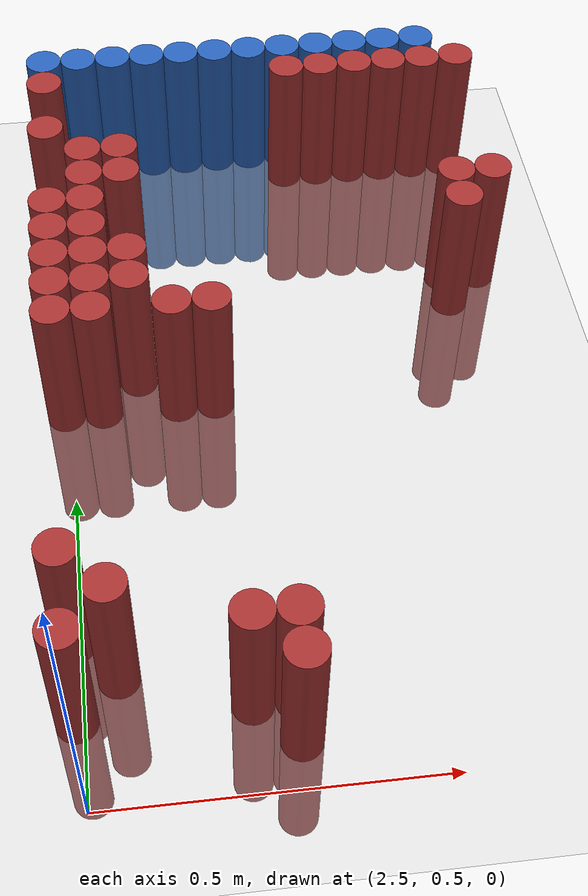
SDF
<sdf version="1.6">
 <world name="default">
  <model name="ground_plane">
   <static>1</static>
   <link name="link">
    <collision name="collision">
     <geometry><plane><normal>0 0 1</normal><size>100 100</size></plane></geometry>
     <surface><friction><ode><mu>100</mu><mu2>50</mu2></ode></friction></surface>
    </collision>
    <visual name="visual">
     <cast_shadows>0</cast_shadows>
     <geometry><plane><normal>0 0 1</normal><size>100 100</size></plane></geometry>
     <material>
      <script><uri>file://media/materials/scripts/gazebo.material</uri><name>Gazebo/Grey</name></script>
     </material>
    </visual>
   </link>
  </model>
  <model name="unit_cylinder_102">
   <static>1</static>
   <pose>2.490000 1.770000 0.000000 0.000000 0.000000 0.000000</pose>
   <link name="link">
    <inertial>
     <mass>1</mass>
     <inertia><ixx>0.145833</ixx><ixy>0</ixy><ixz>0</ixz><iyy>0.145833</iyy><iyz>0</iyz><izz>0.125</izz></inertia>
    </inertial>
    <collision name="collision">
     <geometry><cylinder><radius>0.030000</radius><length>0.5</length></cylinder></geometry>
    </collision>
    <visual name="visual">
     <geometry><cylinder><radius>0.030000</radius><length>0.5</length></cylinder></geometry>
     <material>
      <ambient>0.152000 0.379000 0.720000 1</ambient>
      <diffuse>0.152000 0.379000 0.720000 1</diffuse>
     </material>
     <material>
      <script><name>Gazebo/Grey</name><uri>file://media/materials/scripts/gazebo.material</uri></script>
     </material>
    </visual>
   </link>
  </model>
  <model name="unit_cylinder_103">
   <static>1</static>
   <pose>2.550000 1.770000 0.000000 0.000000 0.000000 0.000000</pose>
   <link name="link">
    <inertial>
     <mass>1</mass>
     <inertia><ixx>0.145833</ixx><ixy>0</ixy><ixz>0</ixz><iyy>0.145833</iyy><iyz>0</iyz><izz>0.125</izz></inertia>
    </inertial>
    <collision name="collision">
     <geometry><cylinder><radius>0.030000</radius><length>0.5</length></cylinder></geometry>
    </collision>
    <visual name="visual">
     <geometry><cylinder><radius>0.030000</radius><length>0.5</length></cylinder></geometry>
     <material>
      <ambient>0.152000 0.379000 0.720000 1</ambient>
      <diffuse>0.152000 0.379000 0.720000 1</diffuse>
     </material>
     <material>
      <script><name>Gazebo/Grey</name><uri>file://media/materials/scripts/gazebo.material</uri></script>
     </material>
    </visual>
   </link>
  </model>
  <model name="unit_cylinder_104">
   <static>1</static>
   <pose>2.610000 1.770000 0.000000 0.000000 0.000000 0.000000</pose>
   <link name="link">
    <inertial>
     <mass>1</mass>
     <inertia><ixx>0.145833</ixx><ixy>0</ixy><ixz>0</ixz><iyy>0.145833</iyy><iyz>0</iyz><izz>0.125</izz></inertia>
    </inertial>
    <collision name="collision">
     <geometry><cylinder><radius>0.030000</radius><length>0.5</length></cylinder></geometry>
    </collision>
    <visual name="visual">
     <geometry><cylinder><radius>0.030000</radius><length>0.5</length></cylinder></geometry>
     <material>
      <ambient>0.152000 0.379000 0.720000 1</ambient>
      <diffuse>0.152000 0.379000 0.720000 1</diffuse>
     </material>
     <material>
      <script><name>Gazebo/Grey</name><uri>file://media/materials/scripts/gazebo.material</uri></script>
     </material>
    </visual>
   </link>
  </model>
  <model name="unit_cylinder_105">
   <static>1</static>
   <pose>2.670000 1.770000 0.000000 0.000000 0.000000 0.000000</pose>
   <link name="link">
    <inertial>
     <mass>1</mass>
     <inertia><ixx>0.145833</ixx><ixy>0</ixy><ixz>0</ixz><iyy>0.145833</iyy><iyz>0</iyz><izz>0.125</izz></inertia>
    </inertial>
    <collision name="collision">
     <geometry><cylinder><radius>0.030000</radius><length>0.5</length></cylinder></geometry>
    </collision>
    <visual name="visual">
     <geometry><cylinder><radius>0.030000</radius><length>0.5</length></cylinder></geometry>
     <material>
      <ambient>0.152000 0.379000 0.720000 1</ambient>
      <diffuse>0.152000 0.379000 0.720000 1</diffuse>
     </material>
     <material>
      <script><name>Gazebo/Grey</name><uri>file://media/materials/scripts/gazebo.material</uri></script>
     </material>
    </visual>
   </link>
  </model>
  <model name="unit_cylinder_106">
   <static>1</static>
   <pose>2.730000 1.770000 0.000000 0.000000 0.000000 0.000000</pose>
   <link name="link">
    <inertial>
     <mass>1</mass>
     <inertia><ixx>0.145833</ixx><ixy>0</ixy><ixz>0</ixz><iyy>0.145833</iyy><iyz>0</iyz><izz>0.125</izz></inertia>
    </inertial>
    <collision name="collision">
     <geometry><cylinder><radius>0.030000</radius><length>0.5</length></cylinder></geometry>
    </collision>
    <visual name="visual">
     <geometry><cylinder><radius>0.030000</radius><length>0.5</length></cylinder></geometry>
     <material>
      <ambient>0.152000 0.379000 0.720000 1</ambient>
      <diffuse>0.152000 0.379000 0.720000 1</diffuse>
     </material>
     <material>
      <script><name>Gazebo/Grey</name><uri>file://media/materials/scripts/gazebo.material</uri></script>
     </material>
    </visual>
   </link>
  </model>
  <model name="unit_cylinder_107">
   <static>1</static>
   <pose>2.790000 1.770000 0.000000 0.000000 0.000000 0.000000</pose>
   <link name="link">
    <inertial>
     <mass>1</mass>
     <inertia><ixx>0.145833</ixx><ixy>0</ixy><ixz>0</ixz><iyy>0.145833</iyy><iyz>0</iyz><izz>0.125</izz></inertia>
    </inertial>
    <collision name="collision">
     <geometry><cylinder><radius>0.030000</radius><length>0.5</length></cylinder></geometry>
    </collision>
    <visual name="visual">
     <geometry><cylinder><radius>0.030000</radius><length>0.5</length></cylinder></geometry>
     <material>
      <ambient>0.152000 0.379000 0.720000 1</ambient>
      <diffuse>0.152000 0.379000 0.720000 1</diffuse>
     </material>
     <material>
      <script><name>Gazebo/Grey</name><uri>file://media/materials/scripts/gazebo.material</uri></script>
     </material>
    </visual>
   </link>
  </model>
  <model name="unit_cylinder_108">
   <static>1</static>
   <pose>2.850000 1.770000 0.000000 0.000000 0.000000 0.000000</pose>
   <link name="link">
    <inertial>
     <mass>1</mass>
     <inertia><ixx>0.145833</ixx><ixy>0</ixy><ixz>0</ixz><iyy>0.145833</iyy><iyz>0</iyz><izz>0.125</izz></inertia>
    </inertial>
    <collision name="collision">
     <geometry><cylinder><radius>0.030000</radius><length>0.5</length></cylinder></geometry>
    </collision>
    <visual name="visual">
     <geometry><cylinder><radius>0.030000</radius><length>0.5</length></cylinder></geometry>
     <material>
      <ambient>0.152000 0.379000 0.720000 1</ambient>
      <diffuse>0.152000 0.379000 0.720000 1</diffuse>
     </material>
     <material>
      <script><name>Gazebo/Grey</name><uri>file://media/materials/scripts/gazebo.material</uri></script>
     </material>
    </visual>
   </link>
  </model>
  <model name="unit_cylinder_109">
   <static>1</static>
   <pose>2.910000 1.770000 0.000000 0.000000 0.000000 0.000000</pose>
   <link name="link">
    <inertial>
     <mass>1</mass>
     <inertia><ixx>0.145833</ixx><ixy>0</ixy><ixz>0</ixz><iyy>0.145833</iyy><iyz>0</iyz><izz>0.125</izz></inertia>
    </inertial>
    <collision name="collision">
     <geometry><cylinder><radius>0.030000</radius><length>0.5</length></cylinder></geometry>
    </collision>
    <visual name="visual">
     <geometry><cylinder><radius>0.030000</radius><length>0.5</length></cylinder></geometry>
     <material>
      <ambient>0.152000 0.379000 0.720000 1</ambient>
      <diffuse>0.152000 0.379000 0.720000 1</diffuse>
     </material>
     <material>
      <script><name>Gazebo/Grey</name><uri>file://media/materials/scripts/gazebo.material</uri></script>
     </material>
    </visual>
   </link>
  </model>
  <model name="unit_cylinder_110">
   <static>1</static>
   <pose>2.970000 1.770000 0.000000 0.000000 0.000000 0.000000</pose>
   <link name="link">
    <inertial>
     <mass>1</mass>
     <inertia><ixx>0.145833</ixx><ixy>0</ixy><ixz>0</ixz><iyy>0.145833</iyy><iyz>0</iyz><izz>0.125</izz></inertia>
    </inertial>
    <collision name="collision">
     <geometry><cylinder><radius>0.030000</radius><length>0.5</length></cylinder></geometry>
    </collision>
    <visual name="visual">
     <geometry><cylinder><radius>0.030000</radius><length>0.5</length></cylinder></geometry>
     <material>
      <ambient>0.152000 0.379000 0.720000 1</ambient>
      <diffuse>0.152000 0.379000 0.720000 1</diffuse>
     </material>
     <material>
      <script><name>Gazebo/Grey</name><uri>file://media/materials/scripts/gazebo.material</uri></script>
     </material>
    </visual>
   </link>
  </model>
  <model name="unit_cylinder_111">
   <static>1</static>
   <pose>3.030000 1.770000 0.000000 0.000000 0.000000 0.000000</pose>
   <link name="link">
    <inertial>
     <mass>1</mass>
     <inertia><ixx>0.145833</ixx><ixy>0</ixy><ixz>0</ixz><iyy>0.145833</iyy><iyz>0</iyz><izz>0.125</izz></inertia>
    </inertial>
    <collision name="collision">
     <geometry><cylinder><radius>0.030000</radius><length>0.5</length></cylinder></geometry>
    </collision>
    <visual name="visual">
     <geometry><cylinder><radius>0.030000</radius><length>0.5</length></cylinder></geometry>
     <material>
      <ambient>0.152000 0.379000 0.720000 1</ambient>
      <diffuse>0.152000 0.379000 0.720000 1</diffuse>
     </material>
     <material>
      <script><name>Gazebo/Grey</name><uri>file://media/materials/scripts/gazebo.material</uri></script>
     </material>
    </visual>
   </link>
  </model>
  <model name="unit_cylinder_112">
   <static>1</static>
   <pose>3.090000 1.770000 0.000000 0.000000 0.000000 0.000000</pose>
   <link name="link">
    <inertial>
     <mass>1</mass>
     <inertia><ixx>0.145833</ixx><ixy>0</ixy><ixz>0</ixz><iyy>0.145833</iyy><iyz>0</iyz><izz>0.125</izz></inertia>
    </inertial>
    <collision name="collision">
     <geometry><cylinder><radius>0.030000</radius><length>0.5</length></cylinder></geometry>
    </collision>
    <visual name="visual">
     <geometry><cylinder><radius>0.030000</radius><length>0.5</length></cylinder></geometry>
     <material>
      <ambient>0.152000 0.379000 0.720000 1</ambient>
      <diffuse>0.152000 0.379000 0.720000 1</diffuse>
     </material>
     <material>
      <script><name>Gazebo/Grey</name><uri>file://media/materials/scripts/gazebo.material</uri></script>
     </material>
    </visual>
   </link>
  </model>
  <model name="unit_cylinder_113">
   <static>1</static>
   <pose>3.150000 1.770000 0.000000 0.000000 0.000000 0.000000</pose>
   <link name="link">
    <inertial>
     <mass>1</mass>
     <inertia><ixx>0.145833</ixx><ixy>0</ixy><ixz>0</ixz><iyy>0.145833</iyy><iyz>0</iyz><izz>0.125</izz></inertia>
    </inertial>
    <collision name="collision">
     <geometry><cylinder><radius>0.030000</radius><length>0.5</length></cylinder></geometry>
    </collision>
    <visual name="visual">
     <geometry><cylinder><radius>0.030000</radius><length>0.5</length></cylinder></geometry>
     <material>
      <ambient>0.152000 0.379000 0.720000 1</ambient>
      <diffuse>0.152000 0.379000 0.720000 1</diffuse>
     </material>
     <material>
      <script><name>Gazebo/Grey</name><uri>file://media/materials/scripts/gazebo.material</uri></script>
     </material>
    </visual>
   </link>
  </model>
  <model name="unit_cylinder_128">
   <static>1</static>
   <pose>2.490000 1.710000 0.000000 0.000000 0.000000 0.000000</pose>
   <link name="link">
    <inertial>
     <mass>1</mass>
     <inertia><ixx>0.145833</ixx><ixy>0</ixy><ixz>0</ixz><iyy>0.145833</iyy><iyz>0</iyz><izz>0.125</izz></inertia>
    </inertial>
    <collision name="collision">
     <geometry><cylinder><radius>0.030000</radius><length>0.5</length></cylinder></geometry>
    </collision>
    <visual name="visual">
     <geometry><cylinder><radius>0.030000</radius><length>0.5</length></cylinder></geometry>
     <material>
      <ambient>0.648000 0.192000 0.192000 1</ambient>
      <diffuse>0.648000 0.192000 0.192000 1</diffuse>
     </material>
     <material>
      <script><name>Gazebo/Grey</name><uri>file://media/materials/scripts/gazebo.material</uri></script>
     </material>
    </visual>
   </link>
  </model>
  <model name="unit_cylinder_129">
   <static>1</static>
   <pose>2.910000 1.710000 0.000000 0.000000 0.000000 0.000000</pose>
   <link name="link">
    <inertial>
     <mass>1</mass>
     <inertia><ixx>0.145833</ixx><ixy>0</ixy><ixz>0</ixz><iyy>0.145833</iyy><iyz>0</iyz><izz>0.125</izz></inertia>
    </inertial>
    <collision name="collision">
     <geometry><cylinder><radius>0.030000</radius><length>0.5</length></cylinder></geometry>
    </collision>
    <visual name="visual">
     <geometry><cylinder><radius>0.030000</radius><length>0.5</length></cylinder></geometry>
     <material>
      <ambient>0.648000 0.192000 0.192000 1</ambient>
      <diffuse>0.648000 0.192000 0.192000 1</diffuse>
     </material>
     <material>
      <script><name>Gazebo/Grey</name><uri>file://media/materials/scripts/gazebo.material</uri></script>
     </material>
    </visual>
   </link>
  </model>
  <model name="unit_cylinder_130">
   <static>1</static>
   <pose>2.970000 1.710000 0.000000 0.000000 0.000000 0.000000</pose>
   <link name="link">
    <inertial>
     <mass>1</mass>
     <inertia><ixx>0.145833</ixx><ixy>0</ixy><ixz>0</ixz><iyy>0.145833</iyy><iyz>0</iyz><izz>0.125</izz></inertia>
    </inertial>
    <collision name="collision">
     <geometry><cylinder><radius>0.030000</radius><length>0.5</length></cylinder></geometry>
    </collision>
    <visual name="visual">
     <geometry><cylinder><radius>0.030000</radius><length>0.5</length></cylinder></geometry>
     <material>
      <ambient>0.648000 0.192000 0.192000 1</ambient>
      <diffuse>0.648000 0.192000 0.192000 1</diffuse>
     </material>
     <material>
      <script><name>Gazebo/Grey</name><uri>file://media/materials/scripts/gazebo.material</uri></script>
     </material>
    </visual>
   </link>
  </model>
  <model name="unit_cylinder_131">
   <static>1</static>
   <pose>3.030000 1.710000 0.000000 0.000000 0.000000 0.000000</pose>
   <link name="link">
    <inertial>
     <mass>1</mass>
     <inertia><ixx>0.145833</ixx><ixy>0</ixy><ixz>0</ixz><iyy>0.145833</iyy><iyz>0</iyz><izz>0.125</izz></inertia>
    </inertial>
    <collision name="collision">
     <geometry><cylinder><radius>0.030000</radius><length>0.5</length></cylinder></geometry>
    </collision>
    <visual name="visual">
     <geometry><cylinder><radius>0.030000</radius><length>0.5</length></cylinder></geometry>
     <material>
      <ambient>0.648000 0.192000 0.192000 1</ambient>
      <diffuse>0.648000 0.192000 0.192000 1</diffuse>
     </material>
     <material>
      <script><name>Gazebo/Grey</name><uri>file://media/materials/scripts/gazebo.material</uri></script>
     </material>
    </visual>
   </link>
  </model>
  <model name="unit_cylinder_132">
   <static>1</static>
   <pose>3.090000 1.710000 0.000000 0.000000 0.000000 0.000000</pose>
   <link name="link">
    <inertial>
     <mass>1</mass>
     <inertia><ixx>0.145833</ixx><ixy>0</ixy><ixz>0</ixz><iyy>0.145833</iyy><iyz>0</iyz><izz>0.125</izz></inertia>
    </inertial>
    <collision name="collision">
     <geometry><cylinder><radius>0.030000</radius><length>0.5</length></cylinder></geometry>
    </collision>
    <visual name="visual">
     <geometry><cylinder><radius>0.030000</radius><length>0.5</length></cylinder></geometry>
     <material>
      <ambient>0.648000 0.192000 0.192000 1</ambient>
      <diffuse>0.648000 0.192000 0.192000 1</diffuse>
     </material>
     <material>
      <script><name>Gazebo/Grey</name><uri>file://media/materials/scripts/gazebo.material</uri></script>
     </material>
    </visual>
   </link>
  </model>
  <model name="unit_cylinder_133">
   <static>1</static>
   <pose>3.150000 1.710000 0.000000 0.000000 0.000000 0.000000</pose>
   <link name="link">
    <inertial>
     <mass>1</mass>
     <inertia><ixx>0.145833</ixx><ixy>0</ixy><ixz>0</ixz><iyy>0.145833</iyy><iyz>0</iyz><izz>0.125</izz></inertia>
    </inertial>
    <collision name="collision">
     <geometry><cylinder><radius>0.030000</radius><length>0.5</length></cylinder></geometry>
    </collision>
    <visual name="visual">
     <geometry><cylinder><radius>0.030000</radius><length>0.5</length></cylinder></geometry>
     <material>
      <ambient>0.648000 0.192000 0.192000 1</ambient>
      <diffuse>0.648000 0.192000 0.192000 1</diffuse>
     </material>
     <material>
      <script><name>Gazebo/Grey</name><uri>file://media/materials/scripts/gazebo.material</uri></script>
     </material>
    </visual>
   </link>
  </model>
  <model name="unit_cylinder_134">
   <static>1</static>
   <pose>3.210000 1.710000 0.000000 0.000000 0.000000 0.000000</pose>
   <link name="link">
    <inertial>
     <mass>1</mass>
     <inertia><ixx>0.145833</ixx><ixy>0</ixy><ixz>0</ixz><iyy>0.145833</iyy><iyz>0</iyz><izz>0.125</izz></inertia>
    </inertial>
    <collision name="collision">
     <geometry><cylinder><radius>0.030000</radius><length>0.5</length></cylinder></geometry>
    </collision>
    <visual name="visual">
     <geometry><cylinder><radius>0.030000</radius><length>0.5</length></cylinder></geometry>
     <material>
      <ambient>0.648000 0.192000 0.192000 1</ambient>
      <diffuse>0.648000 0.192000 0.192000 1</diffuse>
     </material>
     <material>
      <script><name>Gazebo/Grey</name><uri>file://media/materials/scripts/gazebo.material</uri></script>
     </material>
    </visual>
   </link>
  </model>
  <model name="unit_cylinder_150">
   <static>1</static>
   <pose>2.490000 1.590000 0.000000 0.000000 0.000000 0.000000</pose>
   <link name="link">
    <inertial>
     <mass>1</mass>
     <inertia><ixx>0.145833</ixx><ixy>0</ixy><ixz>0</ixz><iyy>0.145833</iyy><iyz>0</iyz><izz>0.125</izz></inertia>
    </inertial>
    <collision name="collision">
     <geometry><cylinder><radius>0.030000</radius><length>0.5</length></cylinder></geometry>
    </collision>
    <visual name="visual">
     <geometry><cylinder><radius>0.030000</radius><length>0.5</length></cylinder></geometry>
     <material>
      <ambient>0.648000 0.192000 0.192000 1</ambient>
      <diffuse>0.648000 0.192000 0.192000 1</diffuse>
     </material>
     <material>
      <script><name>Gazebo/Grey</name><uri>file://media/materials/scripts/gazebo.material</uri></script>
     </material>
    </visual>
   </link>
  </model>
  <model name="unit_cylinder_153">
   <static>1</static>
   <pose>2.550000 1.530000 0.000000 0.000000 0.000000 0.000000</pose>
   <link name="link">
    <inertial>
     <mass>1</mass>
     <inertia><ixx>0.145833</ixx><ixy>0</ixy><ixz>0</ixz><iyy>0.145833</iyy><iyz>0</iyz><izz>0.125</izz></inertia>
    </inertial>
    <collision name="collision">
     <geometry><cylinder><radius>0.030000</radius><length>0.5</length></cylinder></geometry>
    </collision>
    <visual name="visual">
     <geometry><cylinder><radius>0.030000</radius><length>0.5</length></cylinder></geometry>
     <material>
      <ambient>0.648000 0.192000 0.192000 1</ambient>
      <diffuse>0.648000 0.192000 0.192000 1</diffuse>
     </material>
     <material>
      <script><name>Gazebo/Grey</name><uri>file://media/materials/scripts/gazebo.material</uri></script>
     </material>
    </visual>
   </link>
  </model>
  <model name="unit_cylinder_154">
   <static>1</static>
   <pose>2.610000 1.530000 0.000000 0.000000 0.000000 0.000000</pose>
   <link name="link">
    <inertial>
     <mass>1</mass>
     <inertia><ixx>0.145833</ixx><ixy>0</ixy><ixz>0</ixz><iyy>0.145833</iyy><iyz>0</iyz><izz>0.125</izz></inertia>
    </inertial>
    <collision name="collision">
     <geometry><cylinder><radius>0.030000</radius><length>0.5</length></cylinder></geometry>
    </collision>
    <visual name="visual">
     <geometry><cylinder><radius>0.030000</radius><length>0.5</length></cylinder></geometry>
     <material>
      <ambient>0.648000 0.192000 0.192000 1</ambient>
      <diffuse>0.648000 0.192000 0.192000 1</diffuse>
     </material>
     <material>
      <script><name>Gazebo/Grey</name><uri>file://media/materials/scripts/gazebo.material</uri></script>
     </material>
    </visual>
   </link>
  </model>
  <model name="unit_cylinder_155">
   <static>1</static>
   <pose>2.550000 1.470000 0.000000 0.000000 0.000000 0.000000</pose>
   <link name="link">
    <inertial>
     <mass>1</mass>
     <inertia><ixx>0.145833</ixx><ixy>0</ixy><ixz>0</ixz><iyy>0.145833</iyy><iyz>0</iyz><izz>0.125</izz></inertia>
    </inertial>
    <collision name="collision">
     <geometry><cylinder><radius>0.030000</radius><length>0.5</length></cylinder></geometry>
    </collision>
    <visual name="visual">
     <geometry><cylinder><radius>0.030000</radius><length>0.5</length></cylinder></geometry>
     <material>
      <ambient>0.648000 0.192000 0.192000 1</ambient>
      <diffuse>0.648000 0.192000 0.192000 1</diffuse>
     </material>
     <material>
      <script><name>Gazebo/Grey</name><uri>file://media/materials/scripts/gazebo.material</uri></script>
     </material>
    </visual>
   </link>
  </model>
  <model name="unit_cylinder_156">
   <static>1</static>
   <pose>2.610000 1.470000 0.000000 0.000000 0.000000 0.000000</pose>
   <link name="link">
    <inertial>
     <mass>1</mass>
     <inertia><ixx>0.145833</ixx><ixy>0</ixy><ixz>0</ixz><iyy>0.145833</iyy><iyz>0</iyz><izz>0.125</izz></inertia>
    </inertial>
    <collision name="collision">
     <geometry><cylinder><radius>0.030000</radius><length>0.5</length></cylinder></geometry>
    </collision>
    <visual name="visual">
     <geometry><cylinder><radius>0.030000</radius><length>0.5</length></cylinder></geometry>
     <material>
      <ambient>0.648000 0.192000 0.192000 1</ambient>
      <diffuse>0.648000 0.192000 0.192000 1</diffuse>
     </material>
     <material>
      <script><name>Gazebo/Grey</name><uri>file://media/materials/scripts/gazebo.material</uri></script>
     </material>
    </visual>
   </link>
  </model>
  <model name="unit_cylinder_157">
   <static>1</static>
   <pose>2.490000 1.410000 0.000000 0.000000 0.000000 0.000000</pose>
   <link name="link">
    <inertial>
     <mass>1</mass>
     <inertia><ixx>0.145833</ixx><ixy>0</ixy><ixz>0</ixz><iyy>0.145833</iyy><iyz>0</iyz><izz>0.125</izz></inertia>
    </inertial>
    <collision name="collision">
     <geometry><cylinder><radius>0.030000</radius><length>0.5</length></cylinder></geometry>
    </collision>
    <visual name="visual">
     <geometry><cylinder><radius>0.030000</radius><length>0.5</length></cylinder></geometry>
     <material>
      <ambient>0.648000 0.192000 0.192000 1</ambient>
      <diffuse>0.648000 0.192000 0.192000 1</diffuse>
     </material>
     <material>
      <script><name>Gazebo/Grey</name><uri>file://media/materials/scripts/gazebo.material</uri></script>
     </material>
    </visual>
   </link>
  </model>
  <model name="unit_cylinder_158">
   <static>1</static>
   <pose>2.550000 1.410000 0.000000 0.000000 0.000000 0.000000</pose>
   <link name="link">
    <inertial>
     <mass>1</mass>
     <inertia><ixx>0.145833</ixx><ixy>0</ixy><ixz>0</ixz><iyy>0.145833</iyy><iyz>0</iyz><izz>0.125</izz></inertia>
    </inertial>
    <collision name="collision">
     <geometry><cylinder><radius>0.030000</radius><length>0.5</length></cylinder></geometry>
    </collision>
    <visual name="visual">
     <geometry><cylinder><radius>0.030000</radius><length>0.5</length></cylinder></geometry>
     <material>
      <ambient>0.648000 0.192000 0.192000 1</ambient>
      <diffuse>0.648000 0.192000 0.192000 1</diffuse>
     </material>
     <material>
      <script><name>Gazebo/Grey</name><uri>file://media/materials/scripts/gazebo.material</uri></script>
     </material>
    </visual>
   </link>
  </model>
  <model name="unit_cylinder_159">
   <static>1</static>
   <pose>3.150000 1.410000 0.000000 0.000000 0.000000 0.000000</pose>
   <link name="link">
    <inertial>
     <mass>1</mass>
     <inertia><ixx>0.145833</ixx><ixy>0</ixy><ixz>0</ixz><iyy>0.145833</iyy><iyz>0</iyz><izz>0.125</izz></inertia>
    </inertial>
    <collision name="collision">
     <geometry><cylinder><radius>0.030000</radius><length>0.5</length></cylinder></geometry>
    </collision>
    <visual name="visual">
     <geometry><cylinder><radius>0.030000</radius><length>0.5</length></cylinder></geometry>
     <material>
      <ambient>0.648000 0.192000 0.192000 1</ambient>
      <diffuse>0.648000 0.192000 0.192000 1</diffuse>
     </material>
     <material>
      <script><name>Gazebo/Grey</name><uri>file://media/materials/scripts/gazebo.material</uri></script>
     </material>
    </visual>
   </link>
  </model>
  <model name="unit_cylinder_160">
   <static>1</static>
   <pose>3.210000 1.410000 0.000000 0.000000 0.000000 0.000000</pose>
   <link name="link">
    <inertial>
     <mass>1</mass>
     <inertia><ixx>0.145833</ixx><ixy>0</ixy><ixz>0</ixz><iyy>0.145833</iyy><iyz>0</iyz><izz>0.125</izz></inertia>
    </inertial>
    <collision name="collision">
     <geometry><cylinder><radius>0.030000</radius><length>0.5</length></cylinder></geometry>
    </collision>
    <visual name="visual">
     <geometry><cylinder><radius>0.030000</radius><length>0.5</length></cylinder></geometry>
     <material>
      <ambient>0.648000 0.192000 0.192000 1</ambient>
      <diffuse>0.648000 0.192000 0.192000 1</diffuse>
     </material>
     <material>
      <script><name>Gazebo/Grey</name><uri>file://media/materials/scripts/gazebo.material</uri></script>
     </material>
    </visual>
   </link>
  </model>
  <model name="unit_cylinder_164">
   <static>1</static>
   <pose>2.490000 1.350000 0.000000 0.000000 0.000000 0.000000</pose>
   <link name="link">
    <inertial>
     <mass>1</mass>
     <inertia><ixx>0.145833</ixx><ixy>0</ixy><ixz>0</ixz><iyy>0.145833</iyy><iyz>0</iyz><izz>0.125</izz></inertia>
    </inertial>
    <collision name="collision">
     <geometry><cylinder><radius>0.030000</radius><length>0.5</length></cylinder></geometry>
    </collision>
    <visual name="visual">
     <geometry><cylinder><radius>0.030000</radius><length>0.5</length></cylinder></geometry>
     <material>
      <ambient>0.648000 0.192000 0.192000 1</ambient>
      <diffuse>0.648000 0.192000 0.192000 1</diffuse>
     </material>
     <material>
      <script><name>Gazebo/Grey</name><uri>file://media/materials/scripts/gazebo.material</uri></script>
     </material>
    </visual>
   </link>
  </model>
  <model name="unit_cylinder_165">
   <static>1</static>
   <pose>2.550000 1.350000 0.000000 0.000000 0.000000 0.000000</pose>
   <link name="link">
    <inertial>
     <mass>1</mass>
     <inertia><ixx>0.145833</ixx><ixy>0</ixy><ixz>0</ixz><iyy>0.145833</iyy><iyz>0</iyz><izz>0.125</izz></inertia>
    </inertial>
    <collision name="collision">
     <geometry><cylinder><radius>0.030000</radius><length>0.5</length></cylinder></geometry>
    </collision>
    <visual name="visual">
     <geometry><cylinder><radius>0.030000</radius><length>0.5</length></cylinder></geometry>
     <material>
      <ambient>0.648000 0.192000 0.192000 1</ambient>
      <diffuse>0.648000 0.192000 0.192000 1</diffuse>
     </material>
     <material>
      <script><name>Gazebo/Grey</name><uri>file://media/materials/scripts/gazebo.material</uri></script>
     </material>
    </visual>
   </link>
  </model>
  <model name="unit_cylinder_166">
   <static>1</static>
   <pose>3.150000 1.350000 0.000000 0.000000 0.000000 0.000000</pose>
   <link name="link">
    <inertial>
     <mass>1</mass>
     <inertia><ixx>0.145833</ixx><ixy>0</ixy><ixz>0</ixz><iyy>0.145833</iyy><iyz>0</iyz><izz>0.125</izz></inertia>
    </inertial>
    <collision name="collision">
     <geometry><cylinder><radius>0.030000</radius><length>0.5</length></cylinder></geometry>
    </collision>
    <visual name="visual">
     <geometry><cylinder><radius>0.030000</radius><length>0.5</length></cylinder></geometry>
     <material>
      <ambient>0.648000 0.192000 0.192000 1</ambient>
      <diffuse>0.648000 0.192000 0.192000 1</diffuse>
     </material>
     <material>
      <script><name>Gazebo/Grey</name><uri>file://media/materials/scripts/gazebo.material</uri></script>
     </material>
    </visual>
   </link>
  </model>
  <model name="unit_cylinder_169">
   <static>1</static>
   <pose>2.490000 1.290000 0.000000 0.000000 0.000000 0.000000</pose>
   <link name="link">
    <inertial>
     <mass>1</mass>
     <inertia><ixx>0.145833</ixx><ixy>0</ixy><ixz>0</ixz><iyy>0.145833</iyy><iyz>0</iyz><izz>0.125</izz></inertia>
    </inertial>
    <collision name="collision">
     <geometry><cylinder><radius>0.030000</radius><length>0.5</length></cylinder></geometry>
    </collision>
    <visual name="visual">
     <geometry><cylinder><radius>0.030000</radius><length>0.5</length></cylinder></geometry>
     <material>
      <ambient>0.648000 0.192000 0.192000 1</ambient>
      <diffuse>0.648000 0.192000 0.192000 1</diffuse>
     </material>
     <material>
      <script><name>Gazebo/Grey</name><uri>file://media/materials/scripts/gazebo.material</uri></script>
     </material>
    </visual>
   </link>
  </model>
  <model name="unit_cylinder_170">
   <static>1</static>
   <pose>2.550000 1.290000 0.000000 0.000000 0.000000 0.000000</pose>
   <link name="link">
    <inertial>
     <mass>1</mass>
     <inertia><ixx>0.145833</ixx><ixy>0</ixy><ixz>0</ixz><iyy>0.145833</iyy><iyz>0</iyz><izz>0.125</izz></inertia>
    </inertial>
    <collision name="collision">
     <geometry><cylinder><radius>0.030000</radius><length>0.5</length></cylinder></geometry>
    </collision>
    <visual name="visual">
     <geometry><cylinder><radius>0.030000</radius><length>0.5</length></cylinder></geometry>
     <material>
      <ambient>0.648000 0.192000 0.192000 1</ambient>
      <diffuse>0.648000 0.192000 0.192000 1</diffuse>
     </material>
     <material>
      <script><name>Gazebo/Grey</name><uri>file://media/materials/scripts/gazebo.material</uri></script>
     </material>
    </visual>
   </link>
  </model>
  <model name="unit_cylinder_171">
   <static>1</static>
   <pose>2.610000 1.290000 0.000000 0.000000 0.000000 0.000000</pose>
   <link name="link">
    <inertial>
     <mass>1</mass>
     <inertia><ixx>0.145833</ixx><ixy>0</ixy><ixz>0</ixz><iyy>0.145833</iyy><iyz>0</iyz><izz>0.125</izz></inertia>
    </inertial>
    <collision name="collision">
     <geometry><cylinder><radius>0.030000</radius><length>0.5</length></cylinder></geometry>
    </collision>
    <visual name="visual">
     <geometry><cylinder><radius>0.030000</radius><length>0.5</length></cylinder></geometry>
     <material>
      <ambient>0.648000 0.192000 0.192000 1</ambient>
      <diffuse>0.648000 0.192000 0.192000 1</diffuse>
     </material>
     <material>
      <script><name>Gazebo/Grey</name><uri>file://media/materials/scripts/gazebo.material</uri></script>
     </material>
    </visual>
   </link>
  </model>
  <model name="unit_cylinder_176">
   <static>1</static>
   <pose>2.490000 1.230000 0.000000 0.000000 0.000000 0.000000</pose>
   <link name="link">
    <inertial>
     <mass>1</mass>
     <inertia><ixx>0.145833</ixx><ixy>0</ixy><ixz>0</ixz><iyy>0.145833</iyy><iyz>0</iyz><izz>0.125</izz></inertia>
    </inertial>
    <collision name="collision">
     <geometry><cylinder><radius>0.030000</radius><length>0.5</length></cylinder></geometry>
    </collision>
    <visual name="visual">
     <geometry><cylinder><radius>0.030000</radius><length>0.5</length></cylinder></geometry>
     <material>
      <ambient>0.648000 0.192000 0.192000 1</ambient>
      <diffuse>0.648000 0.192000 0.192000 1</diffuse>
     </material>
     <material>
      <script><name>Gazebo/Grey</name><uri>file://media/materials/scripts/gazebo.material</uri></script>
     </material>
    </visual>
   </link>
  </model>
  <model name="unit_cylinder_177">
   <static>1</static>
   <pose>2.550000 1.230000 0.000000 0.000000 0.000000 0.000000</pose>
   <link name="link">
    <inertial>
     <mass>1</mass>
     <inertia><ixx>0.145833</ixx><ixy>0</ixy><ixz>0</ixz><iyy>0.145833</iyy><iyz>0</iyz><izz>0.125</izz></inertia>
    </inertial>
    <collision name="collision">
     <geometry><cylinder><radius>0.030000</radius><length>0.5</length></cylinder></geometry>
    </collision>
    <visual name="visual">
     <geometry><cylinder><radius>0.030000</radius><length>0.5</length></cylinder></geometry>
     <material>
      <ambient>0.648000 0.192000 0.192000 1</ambient>
      <diffuse>0.648000 0.192000 0.192000 1</diffuse>
     </material>
     <material>
      <script><name>Gazebo/Grey</name><uri>file://media/materials/scripts/gazebo.material</uri></script>
     </material>
    </visual>
   </link>
  </model>
  <model name="unit_cylinder_178">
   <static>1</static>
   <pose>2.610000 1.230000 0.000000 0.000000 0.000000 0.000000</pose>
   <link name="link">
    <inertial>
     <mass>1</mass>
     <inertia><ixx>0.145833</ixx><ixy>0</ixy><ixz>0</ixz><iyy>0.145833</iyy><iyz>0</iyz><izz>0.125</izz></inertia>
    </inertial>
    <collision name="collision">
     <geometry><cylinder><radius>0.030000</radius><length>0.5</length></cylinder></geometry>
    </collision>
    <visual name="visual">
     <geometry><cylinder><radius>0.030000</radius><length>0.5</length></cylinder></geometry>
     <material>
      <ambient>0.648000 0.192000 0.192000 1</ambient>
      <diffuse>0.648000 0.192000 0.192000 1</diffuse>
     </material>
     <material>
      <script><name>Gazebo/Grey</name><uri>file://media/materials/scripts/gazebo.material</uri></script>
     </material>
    </visual>
   </link>
  </model>
  <model name="unit_cylinder_184">
   <static>1</static>
   <pose>2.490000 1.170000 0.000000 0.000000 0.000000 0.000000</pose>
   <link name="link">
    <inertial>
     <mass>1</mass>
     <inertia><ixx>0.145833</ixx><ixy>0</ixy><ixz>0</ixz><iyy>0.145833</iyy><iyz>0</iyz><izz>0.125</izz></inertia>
    </inertial>
    <collision name="collision">
     <geometry><cylinder><radius>0.030000</radius><length>0.5</length></cylinder></geometry>
    </collision>
    <visual name="visual">
     <geometry><cylinder><radius>0.030000</radius><length>0.5</length></cylinder></geometry>
     <material>
      <ambient>0.648000 0.192000 0.192000 1</ambient>
      <diffuse>0.648000 0.192000 0.192000 1</diffuse>
     </material>
     <material>
      <script><name>Gazebo/Grey</name><uri>file://media/materials/scripts/gazebo.material</uri></script>
     </material>
    </visual>
   </link>
  </model>
  <model name="unit_cylinder_185">
   <static>1</static>
   <pose>2.550000 1.170000 0.000000 0.000000 0.000000 0.000000</pose>
   <link name="link">
    <inertial>
     <mass>1</mass>
     <inertia><ixx>0.145833</ixx><ixy>0</ixy><ixz>0</ixz><iyy>0.145833</iyy><iyz>0</iyz><izz>0.125</izz></inertia>
    </inertial>
    <collision name="collision">
     <geometry><cylinder><radius>0.030000</radius><length>0.5</length></cylinder></geometry>
    </collision>
    <visual name="visual">
     <geometry><cylinder><radius>0.030000</radius><length>0.5</length></cylinder></geometry>
     <material>
      <ambient>0.648000 0.192000 0.192000 1</ambient>
      <diffuse>0.648000 0.192000 0.192000 1</diffuse>
     </material>
     <material>
      <script><name>Gazebo/Grey</name><uri>file://media/materials/scripts/gazebo.material</uri></script>
     </material>
    </visual>
   </link>
  </model>
  <model name="unit_cylinder_186">
   <static>1</static>
   <pose>2.670000 1.170000 0.000000 0.000000 0.000000 0.000000</pose>
   <link name="link">
    <inertial>
     <mass>1</mass>
     <inertia><ixx>0.145833</ixx><ixy>0</ixy><ixz>0</ixz><iyy>0.145833</iyy><iyz>0</iyz><izz>0.125</izz></inertia>
    </inertial>
    <collision name="collision">
     <geometry><cylinder><radius>0.030000</radius><length>0.5</length></cylinder></geometry>
    </collision>
    <visual name="visual">
     <geometry><cylinder><radius>0.030000</radius><length>0.5</length></cylinder></geometry>
     <material>
      <ambient>0.648000 0.192000 0.192000 1</ambient>
      <diffuse>0.648000 0.192000 0.192000 1</diffuse>
     </material>
     <material>
      <script><name>Gazebo/Grey</name><uri>file://media/materials/scripts/gazebo.material</uri></script>
     </material>
    </visual>
   </link>
  </model>
  <model name="unit_cylinder_187">
   <static>1</static>
   <pose>2.730000 1.170000 0.000000 0.000000 0.000000 0.000000</pose>
   <link name="link">
    <inertial>
     <mass>1</mass>
     <inertia><ixx>0.145833</ixx><ixy>0</ixy><ixz>0</ixz><iyy>0.145833</iyy><iyz>0</iyz><izz>0.125</izz></inertia>
    </inertial>
    <collision name="collision">
     <geometry><cylinder><radius>0.030000</radius><length>0.5</length></cylinder></geometry>
    </collision>
    <visual name="visual">
     <geometry><cylinder><radius>0.030000</radius><length>0.5</length></cylinder></geometry>
     <material>
      <ambient>0.648000 0.192000 0.192000 1</ambient>
      <diffuse>0.648000 0.192000 0.192000 1</diffuse>
     </material>
     <material>
      <script><name>Gazebo/Grey</name><uri>file://media/materials/scripts/gazebo.material</uri></script>
     </material>
    </visual>
   </link>
  </model>
  <model name="unit_cylinder_199">
   <static>1</static>
   <pose>2.490000 0.750000 0.000000 0.000000 0.000000 0.000000</pose>
   <link name="link">
    <inertial>
     <mass>1</mass>
     <inertia><ixx>0.145833</ixx><ixy>0</ixy><ixz>0</ixz><iyy>0.145833</iyy><iyz>0</iyz><izz>0.125</izz></inertia>
    </inertial>
    <collision name="collision">
     <geometry><cylinder><radius>0.030000</radius><length>0.5</length></cylinder></geometry>
    </collision>
    <visual name="visual">
     <geometry><cylinder><radius>0.030000</radius><length>0.5</length></cylinder></geometry>
     <material>
      <ambient>0.648000 0.192000 0.192000 1</ambient>
      <diffuse>0.648000 0.192000 0.192000 1</diffuse>
     </material>
     <material>
      <script><name>Gazebo/Grey</name><uri>file://media/materials/scripts/gazebo.material</uri></script>
     </material>
    </visual>
   </link>
  </model>
  <model name="unit_cylinder_200">
   <static>1</static>
   <pose>2.550000 0.690000 0.000000 0.000000 0.000000 0.000000</pose>
   <link name="link">
    <inertial>
     <mass>1</mass>
     <inertia><ixx>0.145833</ixx><ixy>0</ixy><ixz>0</ixz><iyy>0.145833</iyy><iyz>0</iyz><izz>0.125</izz></inertia>
    </inertial>
    <collision name="collision">
     <geometry><cylinder><radius>0.030000</radius><length>0.5</length></cylinder></geometry>
    </collision>
    <visual name="visual">
     <geometry><cylinder><radius>0.030000</radius><length>0.5</length></cylinder></geometry>
     <material>
      <ambient>0.648000 0.192000 0.192000 1</ambient>
      <diffuse>0.648000 0.192000 0.192000 1</diffuse>
     </material>
     <material>
      <script><name>Gazebo/Grey</name><uri>file://media/materials/scripts/gazebo.material</uri></script>
     </material>
    </visual>
   </link>
  </model>
  <model name="unit_cylinder_202">
   <static>1</static>
   <pose>2.490000 0.630000 0.000000 0.000000 0.000000 0.000000</pose>
   <link name="link">
    <inertial>
     <mass>1</mass>
     <inertia><ixx>0.145833</ixx><ixy>0</ixy><ixz>0</ixz><iyy>0.145833</iyy><iyz>0</iyz><izz>0.125</izz></inertia>
    </inertial>
    <collision name="collision">
     <geometry><cylinder><radius>0.030000</radius><length>0.5</length></cylinder></geometry>
    </collision>
    <visual name="visual">
     <geometry><cylinder><radius>0.030000</radius><length>0.5</length></cylinder></geometry>
     <material>
      <ambient>0.648000 0.192000 0.192000 1</ambient>
      <diffuse>0.648000 0.192000 0.192000 1</diffuse>
     </material>
     <material>
      <script><name>Gazebo/Grey</name><uri>file://media/materials/scripts/gazebo.material</uri></script>
     </material>
    </visual>
   </link>
  </model>
  <model name="unit_cylinder_203">
   <static>1</static>
   <pose>2.730000 0.630000 0.000000 0.000000 0.000000 0.000000</pose>
   <link name="link">
    <inertial>
     <mass>1</mass>
     <inertia><ixx>0.145833</ixx><ixy>0</ixy><ixz>0</ixz><iyy>0.145833</iyy><iyz>0</iyz><izz>0.125</izz></inertia>
    </inertial>
    <collision name="collision">
     <geometry><cylinder><radius>0.030000</radius><length>0.5</length></cylinder></geometry>
    </collision>
    <visual name="visual">
     <geometry><cylinder><radius>0.030000</radius><length>0.5</length></cylinder></geometry>
     <material>
      <ambient>0.648000 0.192000 0.192000 1</ambient>
      <diffuse>0.648000 0.192000 0.192000 1</diffuse>
     </material>
     <material>
      <script><name>Gazebo/Grey</name><uri>file://media/materials/scripts/gazebo.material</uri></script>
     </material>
    </visual>
   </link>
  </model>
  <model name="unit_cylinder_204">
   <static>1</static>
   <pose>2.790000 0.630000 0.000000 0.000000 0.000000 0.000000</pose>
   <link name="link">
    <inertial>
     <mass>1</mass>
     <inertia><ixx>0.145833</ixx><ixy>0</ixy><ixz>0</ixz><iyy>0.145833</iyy><iyz>0</iyz><izz>0.125</izz></inertia>
    </inertial>
    <collision name="collision">
     <geometry><cylinder><radius>0.030000</radius><length>0.5</length></cylinder></geometry>
    </collision>
    <visual name="visual">
     <geometry><cylinder><radius>0.030000</radius><length>0.5</length></cylinder></geometry>
     <material>
      <ambient>0.648000 0.192000 0.192000 1</ambient>
      <diffuse>0.648000 0.192000 0.192000 1</diffuse>
     </material>
     <material>
      <script><name>Gazebo/Grey</name><uri>file://media/materials/scripts/gazebo.material</uri></script>
     </material>
    </visual>
   </link>
  </model>
  <model name="unit_cylinder_207">
   <static>1</static>
   <pose>2.790000 0.570000 0.000000 0.000000 0.000000 0.000000</pose>
   <link name="link">
    <inertial>
     <mass>1</mass>
     <inertia><ixx>0.145833</ixx><ixy>0</ixy><ixz>0</ixz><iyy>0.145833</iyy><iyz>0</iyz><izz>0.125</izz></inertia>
    </inertial>
    <collision name="collision">
     <geometry><cylinder><radius>0.030000</radius><length>0.5</length></cylinder></geometry>
    </collision>
    <visual name="visual">
     <geometry><cylinder><radius>0.030000</radius><length>0.5</length></cylinder></geometry>
     <material>
      <ambient>0.648000 0.192000 0.192000 1</ambient>
      <diffuse>0.648000 0.192000 0.192000 1</diffuse>
     </material>
     <material>
      <script><name>Gazebo/Grey</name><uri>file://media/materials/scripts/gazebo.material</uri></script>
     </material>
    </visual>
   </link>
  </model>
 </world>
</sdf>
